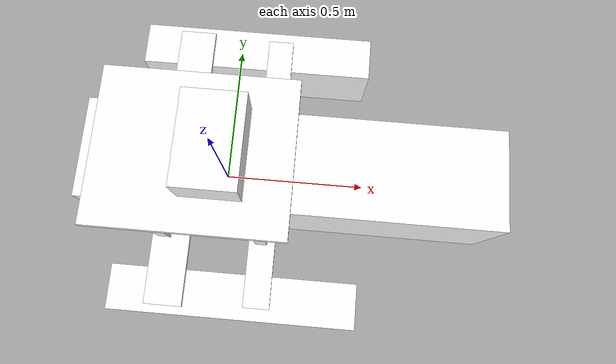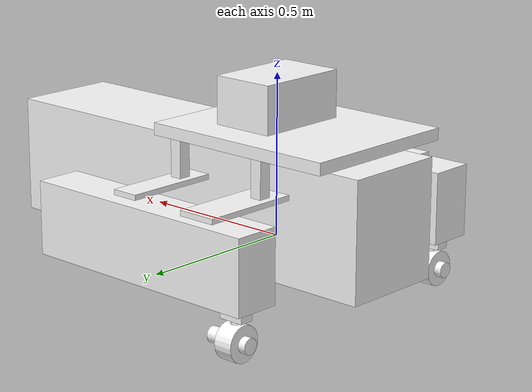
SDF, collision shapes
<?xml version="1.0"?>
<sdf version="1.6">
  <model name="roboboat02">
    <link name="base_link">
      <inertial>
        <pose>0.2 0 -0.2 0 0 0</pose>
        <mass>10</mass>
        <inertia>
          <ixx>0.5666666666666668</ixx>
          <ixy>0</ixy>
          <ixz>0</ixz>
          <iyy>1.0416666666666667</iyy>
          <iyz>0</iyz>
          <izz>1.5416666666666667</izz>
        </inertia>
      </inertial>
      <visual name="visual">
        <geometry>
           <mesh>
            <uri>file://roboboat02/meshes/roboboat02.dae</uri>
          </mesh>
        </geometry>
        <material>
          <diffuse>1.0 1.0 1.0</diffuse>
          <specular>1.0 1.0 1.0</specular>
          <pbr>
            <metal>
              <albedo_map>file://roboboat02/materials/textures/Boat02_Albedo.png</albedo_map>
              <normal_map>file://roboboat02/materials/textures/Boat02_Normal.png</normal_map>
              <roughness_map>file://roboboat02/materials/textures/Boat02_Roughness.png</roughness_map>
              <metalness_map>file://roboboat02/materials/textures/Boat02_Metallic.png</metalness_map>
            </metal>
          </pbr>
          <!-- fallback to script if no PBR support-->
          <script>
            <uri>file://roboboat02/materials/scripts/</uri>
            <uri>file://roboboat02/materials/textures/</uri>
            <name>Fallback/Boat02_Diffuse</name>
          </script>
        </material>
      </visual>

      <collision name="Box042">
        <pose>0.0802271 -0.433496 0.067182 0.0 0.0 0.0</pose>
        <geometry>
          <box>
            <size>0.806774 0.145078 0.226941</size>
          </box>
        </geometry>
      </collision>
      <collision name="Box043">
        <pose>0.0802271 0.4335 0.067182 0.0 0.0 0.0</pose>
        <geometry>
          <box>
            <size>0.806774 0.145078 0.226941</size>
          </box>
        </geometry>
      </collision>
      <collision name="Box044">
        <pose>0.245224 0.0 0.111301 0.0 0.0 0.0</pose>
        <geometry>
          <box>
            <size>1.38539 0.332228 0.367644</size>
          </box>
        </geometry>
      </collision>
      <collision name="Box045">
        <pose>-0.0725149 0.0 0.334772 0.0 0.0 0.0</pose>
        <geometry>
          <box>
            <size>0.644487 0.523591 0.037272</size>
          </box>
        </geometry>
      </collision>
      <collision name="Box046">
        <pose>0.161773 -0.242136 0.266935 0.0 0.0 0.0</pose>
        <geometry>
          <box>
            <size>0.038 0.038 0.134869</size>
          </box>
        </geometry>
      </collision>
      <collision name="Box047">
        <pose>0.161773 0.24214 0.266935 0.0 0.0 0.0</pose>
        <geometry>
          <box>
            <size>0.038 0.038 0.134869</size>
          </box>
        </geometry>
      </collision>
      <collision name="Box048">
        <pose>-0.155861 0.24214 0.266935 0.0 0.0 0.0</pose>
        <geometry>
          <box>
            <size>0.038 0.038 0.134869</size>
          </box>
        </geometry>
      </collision>
      <collision name="Box049">
        <pose>-0.155861 -0.242136 0.266935 0.0 0.0 0.0</pose>
        <geometry>
          <box>
            <size>0.038 0.038 0.134869</size>
          </box>
        </geometry>
      </collision>
      <collision name="Box050">
        <pose>0.16328 0.0 0.193494 0.0 0.0 0.0</pose>
        <geometry>
          <box>
            <size>0.0861031 0.929524 0.0166388</size>
          </box>
        </geometry>
      </collision>
      <collision name="Box051">
        <pose>-0.136293 0.0 0.193494 0.0 0.0 0.0</pose>
        <geometry>
          <box>
            <size>0.123127 0.95741 0.0166388</size>
          </box>
        </geometry>
      </collision>

      <!-- CPU case -->
      <visual name="visual_cpubox">
        <pose>0.0 0.0 0.35 0 0 0</pose>
        <geometry>
           <mesh>
            <uri>file://roboboat_cpubox/meshes/drybox.dae</uri>
          </mesh>
        </geometry>
        <material>
          <diffuse>1.0 1.0 1.0</diffuse>
          <specular>1.0 1.0 1.0</specular>
          <pbr>
            <metal>
              <albedo_map>file://roboboat_cpubox/materials/textures/DryBox_Albedo.png</albedo_map>
              <roughness_map>file://roboboat_cpubox/materials/textures/DryBox_Roughness.png</roughness_map>
            </metal>
          </pbr>
        </material>
      </visual>
      <collision name="cpu_box">
        <pose>0 0 0.35 0 0 0</pose>
        <geometry>
          <box>
            <size>0.2 0.3 0.3</size>
          </box>
        </geometry>
      </collision>
    </link>

     <!-- Left thruster housing -->
    <link name="left_housing_link">
      <inertial>
        <pose>-0.25 0.44 -0.15 0 0 0</pose>
        <mass>1</mass>
        <inertia>
          <ixx>0.0020290833333333333</ixx>
          <ixy>0</ixy>
          <ixz>0</ixz>
          <iyy>0.002408333333333333</iyy>
          <iyz>0</iyz>
          <izz>0.0006874166666666666</izz>
        </inertia>
      </inertial>

      <visual name="left_housing_visual">
        <pose>-0.25 0.44 -0.15 0 0 0</pose>
        <geometry>
           <mesh>
            <uri>file://roboboat01/meshes/housing.dae</uri>
          </mesh>
        </geometry>
        <material>
          <diffuse>1.0 1.0 1.0</diffuse>
          <specular>1.0 1.0 1.0</specular>
          <pbr>
            <metal>
              <albedo_map>file://roboboat01/materials/textures/Thruster_Albedo.png</albedo_map>
              <roughness_map>file://roboboat01/materials/textures/Thruster_Roughness.png</roughness_map>
            </metal>
          </pbr>
        </material>
      </visual>

      <visual name="left_mount_visual">
        <pose>-0.25 0.44 -0.15 0 0 0</pose>
        <geometry>
           <mesh>
            <uri>file://roboboat01/meshes/mount.dae</uri>
          </mesh>
        </geometry>
        <material>
          <diffuse>1.0 1.0 1.0</diffuse>
          <specular>1.0 1.0 1.0</specular>
          <pbr>
            <metal>
              <albedo_map>file://roboboat01/materials/textures/Thruster_Albedo.png</albedo_map>
              <roughness_map>file://roboboat01/materials/textures/Thruster_Roughness.png</roughness_map>
            </metal>
          </pbr>
        </material>
      </visual>

      <collision name="Box011d">
        <pose>-0.25 0.44 -0.049048999999999995 0.0 0.0 0.0</pose>
        <geometry>
          <box>
            <size>0.0810453 0.0430519 0.070925</size>
          </box>
        </geometry>
      </collision>

      <collision name="Cylinder264d">
        <pose>-0.25 0.44 -0.08719339999999999 0.0 0.0 0.0</pose>
        <geometry>
          <cylinder>
            <length>0.125613</length>
            <radius>0.014703</radius>
          </cylinder>
        </geometry>
      </collision>

      <collision name="Cylinder263d">
        <pose>-0.2333463 0.44013299 -0.15 1.5708 0.0 -1.5708</pose>
        <geometry>
          <cylinder>
            <length>0.14376</length>
            <radius>0.0243692</radius>
          </cylinder>
        </geometry>
      </collision>
    </link>

    <!-- Left propeller -->
    <link name="left_prop_link">
      <inertial>
        <pose>-0.250872875 0.440132984 -0.15 1.5708 0.0 -1.5708</pose>
        <mass>0.1</mass>
        <inertia>
          <ixx>0.00010562499999999999</ixx>
          <ixy>0</ixy>
          <ixz>0</ixz>
          <iyy>0.00010562499999999999</iyy>
          <iyz>0</iyz>
          <izz>0.00015125000000000002</izz>
        </inertia>
      </inertial>
      <visual name="left_prop_visual">
        <pose>-0.25 0.44 -0.15 0 0 0</pose>
        <geometry>
           <mesh>
            <uri>file://roboboat01/meshes/prop.dae</uri>
          </mesh>
        </geometry>
        <material>
          <diffuse>1.0 1.0 1.0</diffuse>
          <specular>1.0 1.0 1.0</specular>
          <pbr>
            <metal>
              <albedo_map>file://roboboat01/materials/textures/Thruster_Albedo.png</albedo_map>
              <roughness_map>file://roboboat01/materials/textures/Thruster_Roughness.png</roughness_map>
            </metal>
          </pbr>
        </material>
      </visual>

      <collision name="Cylinder262d">
        <pose>-0.250872875 0.440132984 -0.15 1.5708 0.0 -1.5708</pose>
        <geometry>
          <cylinder>
            <length>0.0608172</length>
            <radius>0.0553844</radius>
          </cylinder>
        </geometry>
      </collision>
    </link>

    <!-- Right thruster housing -->
    <link name="right_housing_link">
      <inertial>
        <pose>-0.25 -0.44 -0.15 0 0 0</pose>
        <mass>1</mass>
        <inertia>
          <ixx>0.0020290833333333333</ixx>
          <ixy>0</ixy>
          <ixz>0</ixz>
          <iyy>0.002408333333333333</iyy>
          <iyz>0</iyz>
          <izz>0.0006874166666666666</izz>
        </inertia>
      </inertial>
      <visual name="right_housing_visual">
        <pose>-0.25 -0.44 -0.15 0 0 0</pose>
        <geometry>
           <mesh>
            <uri>file://roboboat01/meshes/housing.dae</uri>
          </mesh>
        </geometry>
        <material>
          <diffuse>1.0 1.0 1.0</diffuse>
          <specular>1.0 1.0 1.0</specular>
          <pbr>
            <metal>
              <albedo_map>file://roboboat01/materials/textures/Thruster_Albedo.png</albedo_map>
              <roughness_map>file://roboboat01/materials/textures/Thruster_Roughness.png</roughness_map>
            </metal>
          </pbr>
        </material>
      </visual>

      <visual name="right_mount_visual">
        <pose>-0.25 -0.44 -0.15 0 0 0</pose>
        <geometry>
           <mesh>
            <uri>file://roboboat01/meshes/mount.dae</uri>
          </mesh>
        </geometry>
        <material>
          <diffuse>1.0 1.0 1.0</diffuse>
          <specular>1.0 1.0 1.0</specular>
          <pbr>
            <metal>
              <albedo_map>file://roboboat01/materials/textures/Thruster_Albedo.png</albedo_map>
              <roughness_map>file://roboboat01/materials/textures/Thruster_Roughness.png</roughness_map>
            </metal>
          </pbr>
        </material>
      </visual>

      <!-- Thruster collisions -->
      <collision name="Box011i">
        <pose>-0.25 -0.44 -0.049048999999999995 0.0 0.0 0.0</pose>
        <geometry>
          <box>
            <size>0.0810453 0.0430519 0.070925</size>
          </box>
        </geometry>
      </collision>

      <collision name="Cylinder264i">
        <pose>-0.25 -0.44 -0.08719339999999999 0.0 0.0 0.0</pose>
        <geometry>
          <cylinder>
            <length>0.125613</length>
            <radius>0.014703</radius>
          </cylinder>
        </geometry>
      </collision>

      <collision name="Cylinder263i">
        <pose>-0.2333463 -0.44013299 -0.15 1.5708 0.0 -1.5708</pose>
        <geometry>
          <cylinder>
            <length>0.14376</length>
            <radius>0.0243692</radius>
          </cylinder>
        </geometry>
      </collision>
    </link>

    <!-- Right propeller -->
    <link name="right_prop_link">
      <inertial>
        <pose>-0.250872875 -0.440132984 -0.15 1.5708 0.0 -1.5708</pose>
        <mass>0.1</mass>
        <inertia>
          <ixx>0.00010562499999999999</ixx>
          <ixy>0</ixy>
          <ixz>0</ixz>
          <iyy>0.00010562499999999999</iyy>
          <iyz>0</iyz>
          <izz>0.00015125000000000002</izz>
        </inertia>
      </inertial>
      <visual name="right_prop_visual">
        <pose>-0.25 -0.44 -0.15 0 0 0</pose>
        <geometry>
           <mesh>
            <uri>file://roboboat01/meshes/prop.dae</uri>
          </mesh>
        </geometry>
        <material>
          <diffuse>1.0 1.0 1.0</diffuse>
          <specular>1.0 1.0 1.0</specular>
          <pbr>
            <metal>
              <albedo_map>file://roboboat01/materials/textures/Thruster_Albedo.png</albedo_map>
              <roughness_map>file://roboboat01/materials/textures/Thruster_Roughness.png</roughness_map>
            </metal>
          </pbr>
        </material>
      </visual>

      <collision name="Cylinder262i">
        <pose>-0.250872875 -0.440132984 -0.15 1.5708 0.0 -1.5708</pose>
        <geometry>
          <cylinder>
            <length>0.0608172</length>
            <radius>0.0553844</radius>
          </cylinder>
        </geometry>
      </collision>
    </link>

    <!-- Chassis-left engine joint -->
    <joint name="left_chasis_engine_joint" type="revolute">
      <axis>
        <xyz>0 0 1</xyz>
        <limit>
          <lower>0</lower>
          <upper>0</upper>
          <effort>10</effort>
          <velocity>10</velocity>
        </limit>
      </axis>
      <parent>base_link</parent>
      <child>left_housing_link</child>
    </joint>

    <!-- Left joint housing-propeller -->
    <joint name="left_engine_propeller_joint" type="revolute">
      <pose>-0.250872875 0.440132984 -0.15 1.5708 0.0 0</pose>
      <axis>
        <xyz>1 0 0</xyz>
        <limit>
          <effort>100</effort>
          <velocity>100</velocity>
        </limit>
        <dynamics>
          <friction>0.05</friction>
          <damping>0.05</damping>
        </dynamics>
      </axis>
      <parent>left_housing_link</parent>
      <child>left_prop_link</child>
    </joint>

    <!-- Chassis-right engine joint -->
    <joint name="right_chasis_engine_joint" type="revolute">
      <axis>
        <xyz>0 0 1</xyz>
        <limit>
          <lower>0</lower>
          <upper>0</upper>
          <effort>10</effort>
          <velocity>10</velocity>
        </limit>
      </axis>
      <parent>base_link</parent>
      <child>right_housing_link</child>
    </joint>

    <!-- Right joint housing-propeller -->
    <joint name="right_engine_propeller_joint" type="revolute">
      <pose>-0.250872875 -0.440132984 -0.15 1.5708 0.0 0</pose>
      <axis>
        <xyz>1 0 0</xyz>
        <limit>
          <effort>100</effort>
          <velocity>100</velocity>
        </limit>
        <dynamics>
          <friction>0.05</friction>
          <damping>0.05</damping>
        </dynamics>
      </axis>
      <parent>right_housing_link</parent>
      <child>right_prop_link</child>
    </joint>

    <!-- Left hull -->
    <plugin
      filename="libSurface.so"
      name="vrx::Surface">
      <link_name>base_link</link_name>
      <hull_length>0.8</hull_length>
      <hull_radius>0.075</hull_radius>
      <fluid_level>0.1</fluid_level>
      <points>
        <point>0.48 0.4335 0.067</point>
        <point>-0.32 0.4335 0.067</point>
      </points>
      <wavefield>
        <topic>/vrx/wavefield/parameters</topic>
      </wavefield>
    </plugin>

    <!-- Central hull -->
    <plugin
      filename="libSurface.so"
      name="vrx::Surface">
      <link_name>base_link</link_name>
      <hull_length>1.385</hull_length>
      <hull_radius>0.165</hull_radius>
      <fluid_level>0.1</fluid_level>
      <points>
        <point>0.94 0 0.111301</point>
        <point>-0.45 0 0.111301</point>
      </points>
      <wavefield>
        <topic>/vrx/wavefield/parameters</topic>
      </wavefield>
    </plugin>

    <!-- Right hull -->
    <plugin
      filename="libSurface.so"
      name="vrx::Surface">
      <link_name>base_link</link_name>
      <hull_length>0.8</hull_length>
      <hull_radius>0.075</hull_radius>
      <fluid_level>0.1</fluid_level>
      <points>
        <point>0.48 -0.4335 0.067</point>
        <point>-0.32 -0.4335 0.067</point>
      </points>
      <wavefield>
        <topic>/vrx/wavefield/parameters</topic>
      </wavefield>
    </plugin>

    <plugin
      filename="libSimpleHydrodynamics.so"
      name="vrx::SimpleHydrodynamics">
      <link_name>base_link</link_name>
      <!-- Added mass -->
      <xDotU>0.0</xDotU>
      <yDotV>0.0</yDotV>
      <nDotR>0.0</nDotR>
      <!-- Linear and quadratic drag -->
      <xU>4.0</xU>
      <xUU>6.0</xUU>
      <yV>4.0</yV>
      <yVV>4.0</yVV>
      <zW>20.0</zW>
      <kP>12.0</kP>
      <kPP>24.0</kPP>
      <mQ>36.0</mQ>
      <mQQ>35.0</mQQ>
      <nR>32.0</nR>
      <nRR>32.0</nRR>
    </plugin>

    <plugin
      filename="gz-sim-thruster-system"
      name="gz::sim::systems::Thruster">
      <joint_name>left_engine_propeller_joint</joint_name>
      <cmd_timeout>0.5</cmd_timeout>
      <thrust_coefficient>0.0001</thrust_coefficient>
      <fluid_density>1000</fluid_density>
      <propeller_diameter>0.1</propeller_diameter>
      <velocity_control>true</velocity_control>
    </plugin>

    <plugin
      filename="gz-sim-thruster-system"
      name="gz::sim::systems::Thruster">
      <joint_name>right_engine_propeller_joint</joint_name>
      <cmd_timeout>0.5</cmd_timeout>
      <thrust_coefficient>-0.0001</thrust_coefficient>
      <fluid_density>1000</fluid_density>
      <propeller_diameter>0.1</propeller_diameter>
      <velocity_control>true</velocity_control>
    </plugin>
  </model>
</sdf>
